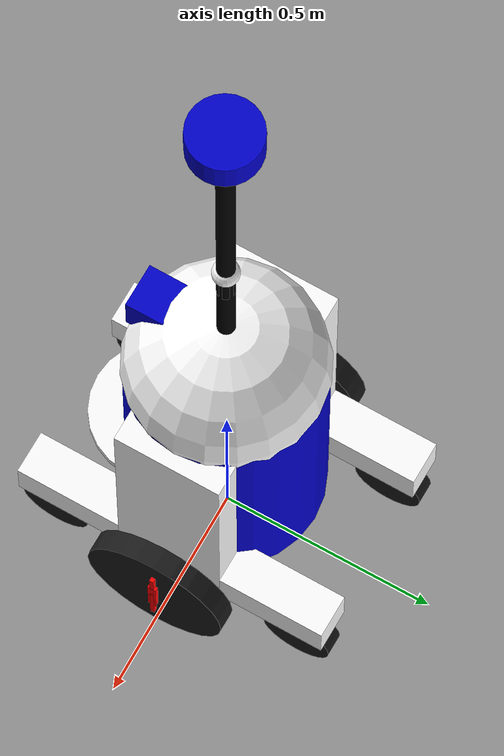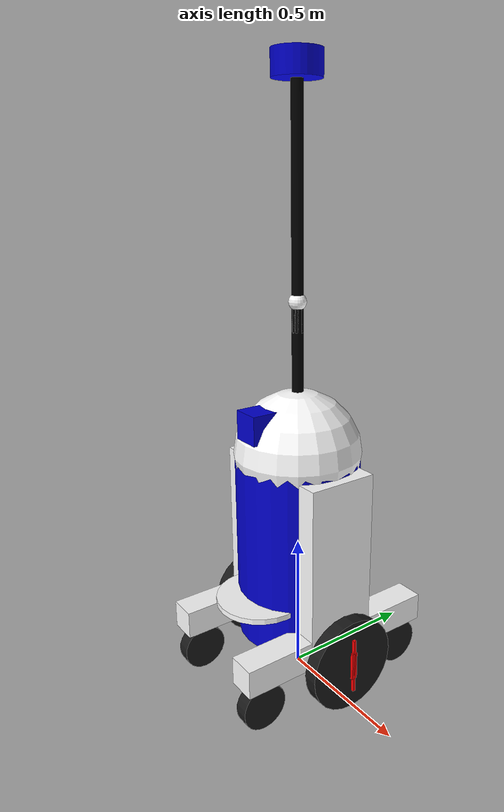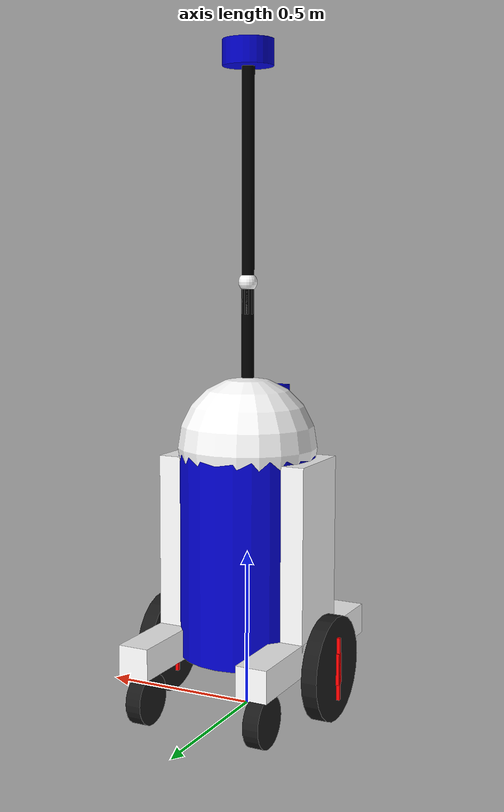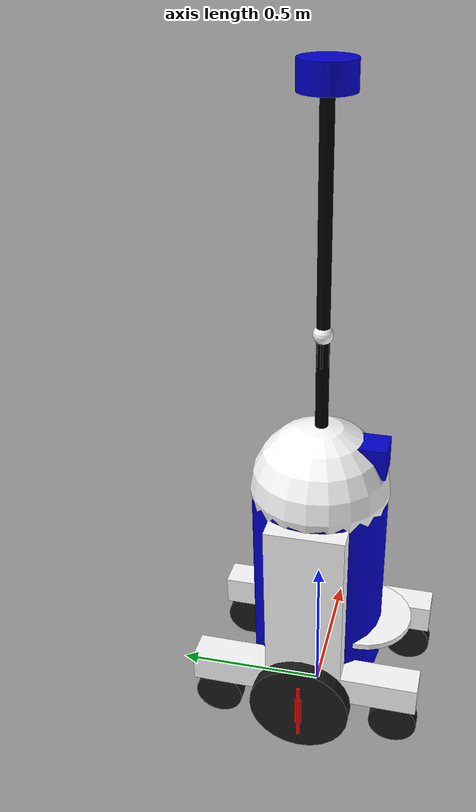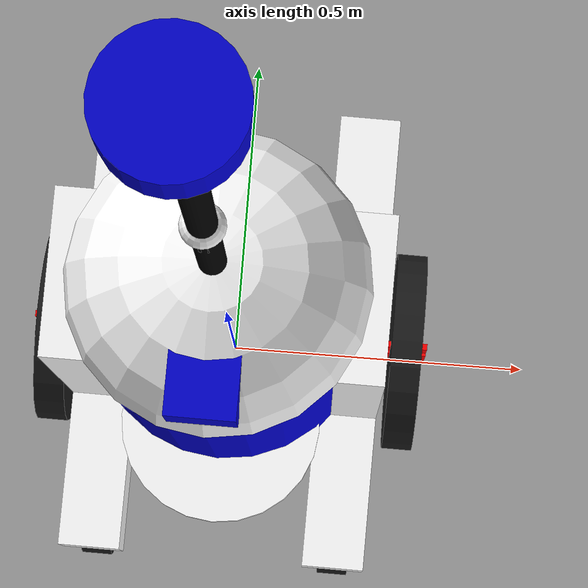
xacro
<?xml version="1.0"?>
<robot name="r3d3_visual" xmlns:xacro="http://www.ros.org/wiki/xacro" > <!-- Needed to read urdf as xacro (This is like a C++ Structure) -->

  <xacro:property name="front_caster_x" value="0.3" />
  <xacro:property name="front_caster_y" value="0.2" />
  <xacro:property name="rear_caster_x" value="-0.3" />
  <xacro:property name="rear_caster_y" value="0.2" />
  <xacro:property name="frame_height" value="0.18" />
  <xacro:property name="wheel_radius" value="0.165" />
  <xacro:property name="caster_radius" value="0.08" />
  <xacro:property name="drive_wheel_offset" value="0.29" /> <!-- can do math withen xacros -->

  <xacro:macro name="drive_wheel" params="name y_offset" > <!-- y_offset = difference between the same wheel -->
    <link name="${name}_wheel" > <!-- Allows us to access name variable -->
      <visual>
        <geometry>
          <cylinder length="0.05" radius="${wheel_radius}"/>
        </geometry>
        <material name="dark_gray"/> <!-- Can't take multiple colors so first one is took -->
      </visual>
      <visual>
        <geometry>
          <box size="0.02 0.1 0.07"/>
        </geometry>
        <material name="red"/>
      </visual>
      <visual>
        <geometry>
          <box size="0.01 0.2 0.07"/>
        </geometry>
        <material name="red"/>
      </visual>
    </link>

    <joint name="${name}_wheel_joint" type="continuous" > <!-- note continuous here -->
      <parent link="body_link" />
      <child link="${name}_wheel" />
      <origin xyz="0 ${y_offset} 0" rpy="-1.5707 0 0" />
      <axis xyz="0 0 1" />
      <limit effort="1000.0" velocity="50.0" />
    </joint>
  </xacro:macro>

  <xacro:macro name="caster_wheel" params="name x_offset y_offset" > <!-- stupid training wheels -->
    <link name="${name}_caster" >
      <visual>
        <geometry>
          <cylinder length="0.05" radius="${caster_radius}"/>
        </geometry>
        <material name="dark_gray"/>
      </visual>
    </link>

    <joint name="${name}_caster_joint" type="fixed" >
      <parent link="body_link" />
      <child link="${name}_caster" />
      <origin xyz="${x_offset} ${y_offset} ${-(wheel_radius-caster_radius)}" rpy="-1.5707 0 0" /> <!-- 0 offset = caster wheels above ground -->
    </joint>
  </xacro:macro>

  <xacro:drive_wheel name="left" y_offset="${drive_wheel_offset}" />
  <xacro:drive_wheel name="right" y_offset="${-drive_wheel_offset}" />
  <xacro:caster_wheel name="fl" x_offset="${front_caster_x}" y_offset="${front_caster_y}" />
  <xacro:caster_wheel name="fr" x_offset="${front_caster_x}" y_offset="${-front_caster_y}" />
  <xacro:caster_wheel name="rl" x_offset="${rear_caster_x}" y_offset="${rear_caster_y}" />
  <xacro:caster_wheel name="rr" x_offset="${rear_caster_x}" y_offset="${-rear_caster_y}" />

  <link name="base_footprint" > <!-- no physical component IRL, this is center of robot, first thing you do -->
  </link>

  <link name="body_link" >

    <inertial>
      <mass value="100" />
      <inertia ixx="1.0" ixy="0" ixz="0" iyy="1.0" iyz="0" izz="1.0" /> <!-- Note location of this -->
    </inertial>

    <visual>
      <origin xyz="0 0 ${frame_height}" rpy="0 0 0" />
      <geometry>
        <box size="0.1 0.1 0.1"/>
      </geometry>
    </visual>
  </link>

  <joint name="base_joint" type="fixed" > <!-- Fixed so they stay connected together -->
    <parent link="base_footprint" />
    <child link="body_link" />
    <origin xyz="0 0 ${wheel_radius}" rpy="0 0 -1.58" /> <!-- Original 0, 0, 0 -->
  </joint>

  <material name="gray" >
    <color rgba="0.4 0.4 0.4 1.0" />
  </material>

  <material name="dark_gray" >
    <color rgba="0.1 0.1 0.1 1.0" />
  </material>

  <material name="red" >
    <color rgba="1 0 0 1.0" />
  </material>

<!-- R3D3 Visuals -->

  <material name="white">
    <color rgba="1 1 1 1"/>
  </material>

  <material name="blue">
    <color rgba="0 0 0.8 1"/>
  </material>

  <material name="black">
    <color rgba="0 0 0 1"/>
  </material>

  <link name="camera_pole1">
    <visual>
      <geometry>
        <cylinder length="0.6" radius="0.02"/>
      </geometry>
      <material name="black"/>
    </visual>
  </link>

  <joint name="head_to_camera_pole" type="fixed">
    <parent link="head"/>
    <child link="camera_pole1"/>
    <origin xyz="0 0 0.22" rpy="0 0 0" />
  </joint>

  <link name="camera_pole2">
    <visual>
      <geometry>
        <cylinder length="0.8" radius="0.02"/>
      </geometry>
      <material name="black"/>
    </visual>
  </link>

  <joint name="camera1_to_camera2_pole" type="fixed">
    <parent link="camera_pole1"/>
    <child link="camera_pole2"/>
    <origin xyz="0.0 0 0.6" rpy="0 0 0" />
  </joint>

  <link name="camera_joint">
    <visual>
      <geometry>
        <sphere radius="0.03"/>
      </geometry>
      <material name="white"/>
    </visual>
  </link>

  <joint name="camera1_to_camera2_joint" type="fixed">
    <parent link="camera_pole1"/>
    <child link="camera_joint"/>
    <origin xyz="0 0 0.3" rpy="0 0 0" />
  </joint>

  <link name="lidar_pad">
    <visual>
      <geometry>
        <cylinder length="0.02" radius="0.16"/>
      </geometry>
      <material name="white"/>
    </visual>
  </link>

  <joint name="base_to_lidar_pad" type="fixed">
    <parent link="body_link"/>
    <child link="lidar_pad"/>
    <origin xyz="0.16 0 0.17" rpy="0 0 0" />
  </joint>

  <link name="sensor_pad">
    <visual>
      <geometry>
        <cylinder length="0.08" radius="0.08"/>
      </geometry>
      <material name="blue"/>
    </visual>
  </link>

  <joint name="base_to_sensor_pad" type="fixed">
    <parent link="body_link"/>
    <child link="sensor_pad"/>
    <origin xyz="0 0 1.9" rpy="0 0 0" />
  </joint>

  <link name="head">
    <visual>
      <geometry>
        <sphere radius="0.2225"/>
      </geometry>
      <material name="white"/>
    </visual>
  </link>

  <joint name="head" type="fixed">
    <parent link="body_link"/>
    <child link="head"/>
    <origin xyz="0 0 0.68" rpy="0 0 0" />
  </joint>

  <link name="body">
    <visual>
      <geometry>
        <cylinder length="0.68" radius="0.2175"/>
      </geometry>
      <material name="blue"/>
    </visual>
  </link>

  <joint name="base_to_body" type="fixed">
    <parent link="body_link"/>
    <child link="body"/>
    <origin xyz="0 0 0.35" rpy="0 0 0" />
  </joint>

  <link name="right_caster_leg">
    <visual>
      <geometry>
        <box size="0.75 0.1 0.1"/>
      </geometry>
      <material name="white"/>
    </visual>
  </link>

  <joint name="base_to_right_caster_leg" type="fixed">
    <parent link="body_link"/>
    <child link="right_caster_leg"/>
    <origin xyz="0 0.2 0.05" rpy="0 0 0" />
  </joint>

  <link name="left_caster_leg">
    <visual>
      <geometry>
        <box size="0.75 0.1 0.1"/>
      </geometry>
      <material name="white"/>
    </visual>
  </link>

  <joint name="base_to_left_caster_leg" type="fixed">
    <parent link="body_link"/>
    <child link="left_caster_leg"/>
    <origin xyz="0 -0.2 0.05" rpy="0 0 0" />
  </joint>

  <link name="right_leg">
    <visual>
      <geometry>
        <box size="0.25 0.1 0.6"/>
      </geometry>
      <material name="white"/>
    </visual>
  </link>

  <joint name="base_to_right_leg" type="fixed">
    <parent link="body_link"/>
    <child link="right_leg"/>
    <origin xyz="0 0.2 0.35" rpy="0 0 0" />
  </joint>

  <link name="left_leg">
    <visual>
      <geometry>
        <box size="0.25 0.1 0.6"/>
      </geometry>
      <material name="white"/>
    </visual>
  </link>

  <joint name="base_to_left_leg" type="fixed">
    <parent link="body_link"/>
    <child link="left_leg"/>
    <origin xyz="0 -0.2 0.35" rpy="0 0 0" />
  </joint>

  <link name="eye">
    <visual>
      <geometry>
        <box size="0.1 0.1 0.1"/>
      </geometry>
      <material name="blue"/>
    </visual>
  </link>

  <joint name="head_to_eye" type="fixed">
    <parent link="head"/>
    <child link="eye"/>
    <origin xyz="0.16 0 0.13" rpy="0 0 0" />
  </joint>

</robot>
